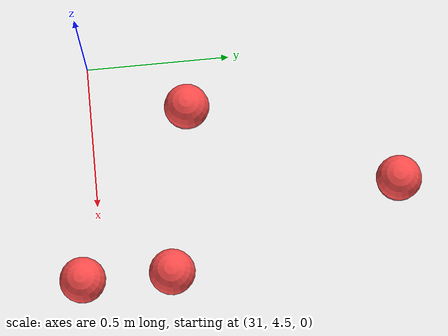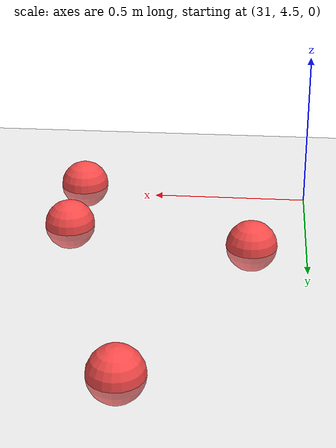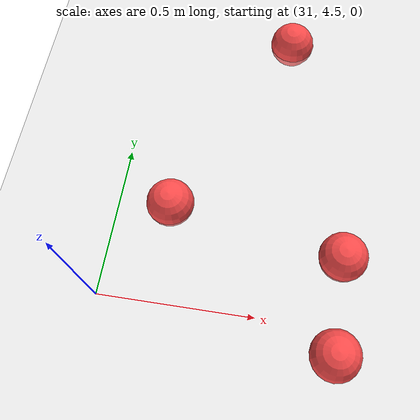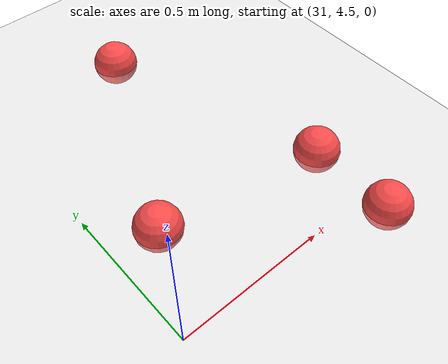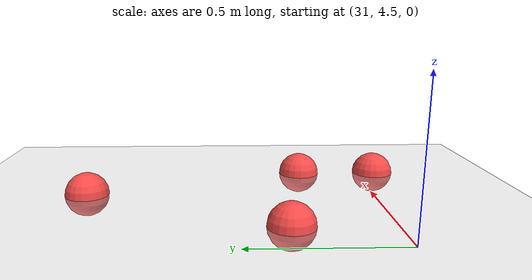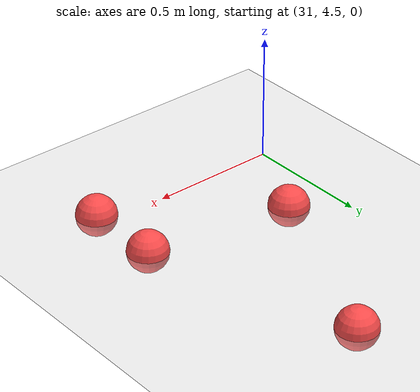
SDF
<sdf version="1.7">
 <world name="default">
  <model name="ground_plane">
   <static>1</static>
   <link name="link">
    <collision name="collision">
     <geometry><plane><normal>0 0 1</normal><size>100 100</size></plane></geometry>
     <surface>
      <contact><collide_bitmask>65535</collide_bitmask></contact>
      <friction><ode><mu>100</mu><mu2>50</mu2></ode></friction>
     </surface>
    </collision>
    <visual name="visual">
     <cast_shadows>0</cast_shadows>
     <geometry><plane><normal>0 0 1</normal><size>100 100</size></plane></geometry>
     <material>
      <script><uri>file://media/materials/scripts/gazebo.material</uri><name>Gazebo/Grey</name></script>
     </material>
    </visual>
   </link>
  </model>
  <model name="seed_red_332">
   <link name="link">
    <inertial>
     <mass>1</mass>
     <inertia><ixx>0.1</ixx><ixy>0</ixy><ixz>0</ixz><iyy>0.1</iyy><iyz>0</iyz><izz>0.1</izz></inertia>
    </inertial>
    <visual name="visual">
     <geometry><sphere><radius>0.08</radius></sphere></geometry>
     <material>
      <script><name>Gazebo/Grey</name><uri>file://media/materials/scripts/gazebo.material</uri></script>
      <shader type="pixel"><normal_map>__default__</normal_map></shader>
      <ambient>1 0.3 0.3 1</ambient>
      <diffuse>0.7 0.7 0.7 1</diffuse>
      <specular>0.01 0.01 0.01 1</specular>
      <emissive>0 0 0 1</emissive>
     </material>
    </visual>
    <collision name="collision">
     <geometry><sphere><radius>0.0005</radius></sphere></geometry>
     <surface>
      <friction>
       <ode><mu>1</mu><mu2>1</mu2><fdir1>0 0 0</fdir1><slip1>0</slip1><slip2>0</slip2></ode>
       <torsional>
        <coefficient>1</coefficient>
        <patch_radius>0</patch_radius>
        <surface_radius>0</surface_radius>
        <use_patch_radius>1</use_patch_radius>
        <ode><slip>0</slip></ode>
       </torsional>
      </friction>
      <bounce><restitution_coefficient>0</restitution_coefficient><threshold>1e+06</threshold></bounce>
      <contact>
       <collide_without_contact>0</collide_without_contact>
       <collide_without_contact_bitmask>1</collide_without_contact_bitmask>
       <collide_bitmask>1</collide_bitmask>
       <ode>
        <soft_cfm>0</soft_cfm>
        <soft_erp>0.2</soft_erp>
        <kp>1e+13</kp>
        <kd>1</kd>
        <max_vel>0.01</max_vel>
        <min_depth>0</min_depth>
       </ode>
       <bullet>
        <split_impulse>1</split_impulse>
        <split_impulse_penetration_threshold>-0.01</split_impulse_penetration_threshold>
        <soft_cfm>0</soft_cfm>
        <soft_erp>0.2</soft_erp>
        <kp>1e+13</kp>
        <kd>1</kd>
       </bullet>
      </contact>
     </surface>
    </collision>
   </link>
   <static>0</static>
   <pose>31.1683 4.83697 0.0005 0 -0 0</pose>
  </model>
  <model name="seed_red_335">
   <link name="link">
    <inertial>
     <mass>1</mass>
     <inertia><ixx>0.1</ixx><ixy>0</ixy><ixz>0</ixz><iyy>0.1</iyy><iyz>0</iyz><izz>0.1</izz></inertia>
    </inertial>
    <visual name="visual">
     <geometry><sphere><radius>0.08</radius></sphere></geometry>
     <material>
      <script><name>Gazebo/Grey</name><uri>file://media/materials/scripts/gazebo.material</uri></script>
      <shader type="pixel"><normal_map>__default__</normal_map></shader>
      <ambient>1 0.3 0.3 1</ambient>
      <diffuse>0.7 0.7 0.7 1</diffuse>
      <specular>0.01 0.01 0.01 1</specular>
      <emissive>0 0 0 1</emissive>
     </material>
    </visual>
    <collision name="collision">
     <geometry><sphere><radius>0.0005</radius></sphere></geometry>
     <surface>
      <friction>
       <ode><mu>1</mu><mu2>1</mu2><fdir1>0 0 0</fdir1><slip1>0</slip1><slip2>0</slip2></ode>
       <torsional>
        <coefficient>1</coefficient>
        <patch_radius>0</patch_radius>
        <surface_radius>0</surface_radius>
        <use_patch_radius>1</use_patch_radius>
        <ode><slip>0</slip></ode>
       </torsional>
      </friction>
      <bounce><restitution_coefficient>0</restitution_coefficient><threshold>1e+06</threshold></bounce>
      <contact>
       <collide_without_contact>0</collide_without_contact>
       <collide_without_contact_bitmask>1</collide_without_contact_bitmask>
       <collide_bitmask>1</collide_bitmask>
       <ode>
        <soft_cfm>0</soft_cfm>
        <soft_erp>0.2</soft_erp>
        <kp>1e+13</kp>
        <kd>1</kd>
        <max_vel>0.01</max_vel>
        <min_depth>0</min_depth>
       </ode>
       <bullet>
        <split_impulse>1</split_impulse>
        <split_impulse_penetration_threshold>-0.01</split_impulse_penetration_threshold>
        <soft_cfm>0</soft_cfm>
        <soft_erp>0.2</soft_erp>
        <kp>1e+13</kp>
        <kd>1</kd>
       </bullet>
      </contact>
     </surface>
    </collision>
   </link>
   <static>0</static>
   <pose>31.7535 4.73581 0.0005 0 -0 0</pose>
  </model>
  <model name="seed_red_336">
   <link name="link">
    <inertial>
     <mass>1</mass>
     <inertia><ixx>0.1</ixx><ixy>0</ixy><ixz>0</ixz><iyy>0.1</iyy><iyz>0</iyz><izz>0.1</izz></inertia>
    </inertial>
    <visual name="visual">
     <geometry><sphere><radius>0.08</radius></sphere></geometry>
     <material>
      <script><name>Gazebo/Grey</name><uri>file://media/materials/scripts/gazebo.material</uri></script>
      <shader type="pixel"><normal_map>__default__</normal_map></shader>
      <ambient>1 0.3 0.3 1</ambient>
      <diffuse>0.7 0.7 0.7 1</diffuse>
      <specular>0.01 0.01 0.01 1</specular>
      <emissive>0 0 0 1</emissive>
     </material>
    </visual>
    <collision name="collision">
     <geometry><sphere><radius>0.0005</radius></sphere></geometry>
     <surface>
      <friction>
       <ode><mu>1</mu><mu2>1</mu2><fdir1>0 0 0</fdir1><slip1>0</slip1><slip2>0</slip2></ode>
       <torsional>
        <coefficient>1</coefficient>
        <patch_radius>0</patch_radius>
        <surface_radius>0</surface_radius>
        <use_patch_radius>1</use_patch_radius>
        <ode><slip>0</slip></ode>
       </torsional>
      </friction>
      <bounce><restitution_coefficient>0</restitution_coefficient><threshold>1e+06</threshold></bounce>
      <contact>
       <collide_without_contact>0</collide_without_contact>
       <collide_without_contact_bitmask>1</collide_without_contact_bitmask>
       <collide_bitmask>1</collide_bitmask>
       <ode>
        <soft_cfm>0</soft_cfm>
        <soft_erp>0.2</soft_erp>
        <kp>1e+13</kp>
        <kd>1</kd>
        <max_vel>0.01</max_vel>
        <min_depth>0</min_depth>
       </ode>
       <bullet>
        <split_impulse>1</split_impulse>
        <split_impulse_penetration_threshold>-0.01</split_impulse_penetration_threshold>
        <soft_cfm>0</soft_cfm>
        <soft_erp>0.2</soft_erp>
        <kp>1e+13</kp>
        <kd>1</kd>
       </bullet>
      </contact>
     </surface>
    </collision>
   </link>
   <static>0</static>
   <pose>31.7527 4.42852 0.0005 0 -0 0</pose>
  </model>
  <model name="seed_red_337">
   <link name="link">
    <inertial>
     <mass>1</mass>
     <inertia><ixx>0.1</ixx><ixy>0</ixy><ixz>0</ixz><iyy>0.1</iyy><iyz>0</iyz><izz>0.1</izz></inertia>
    </inertial>
    <visual name="visual">
     <geometry><sphere><radius>0.08</radius></sphere></geometry>
     <material>
      <script><name>Gazebo/Grey</name><uri>file://media/materials/scripts/gazebo.material</uri></script>
      <shader type="pixel"><normal_map>__default__</normal_map></shader>
      <ambient>1 0.3 0.3 1</ambient>
      <diffuse>0.7 0.7 0.7 1</diffuse>
      <specular>0.01 0.01 0.01 1</specular>
      <emissive>0 0 0 1</emissive>
     </material>
    </visual>
    <collision name="collision">
     <geometry><sphere><radius>0.0005</radius></sphere></geometry>
     <surface>
      <friction>
       <ode><mu>1</mu><mu2>1</mu2><fdir1>0 0 0</fdir1><slip1>0</slip1><slip2>0</slip2></ode>
       <torsional>
        <coefficient>1</coefficient>
        <patch_radius>0</patch_radius>
        <surface_radius>0</surface_radius>
        <use_patch_radius>1</use_patch_radius>
        <ode><slip>0</slip></ode>
       </torsional>
      </friction>
      <bounce><restitution_coefficient>0</restitution_coefficient><threshold>1e+06</threshold></bounce>
      <contact>
       <collide_without_contact>0</collide_without_contact>
       <collide_without_contact_bitmask>1</collide_without_contact_bitmask>
       <collide_bitmask>1</collide_bitmask>
       <ode>
        <soft_cfm>0</soft_cfm>
        <soft_erp>0.2</soft_erp>
        <kp>1e+13</kp>
        <kd>1</kd>
        <max_vel>0.01</max_vel>
        <min_depth>0</min_depth>
       </ode>
       <bullet>
        <split_impulse>1</split_impulse>
        <split_impulse_penetration_threshold>-0.01</split_impulse_penetration_threshold>
        <soft_cfm>0</soft_cfm>
        <soft_erp>0.2</soft_erp>
        <kp>1e+13</kp>
        <kd>1</kd>
       </bullet>
      </contact>
     </surface>
    </collision>
   </link>
   <static>0</static>
   <pose>31.4981 5.54863 0.0005 0 -0 0</pose>
  </model>
 </world>
</sdf>
